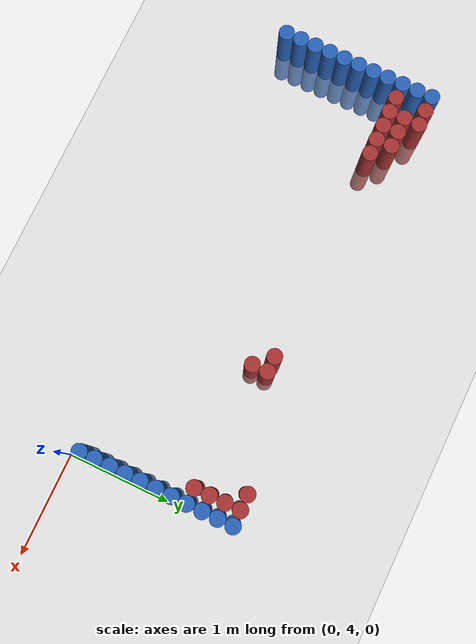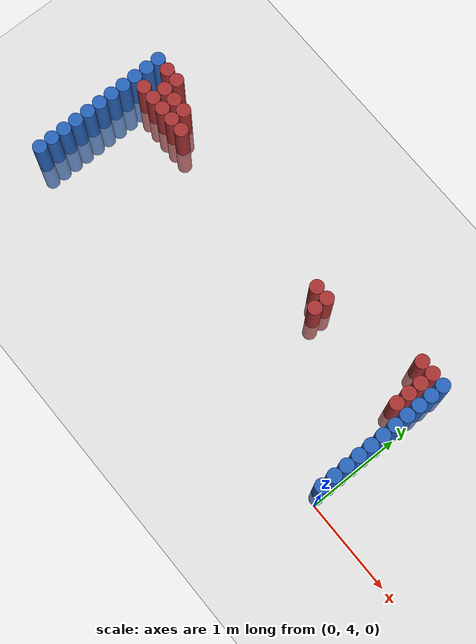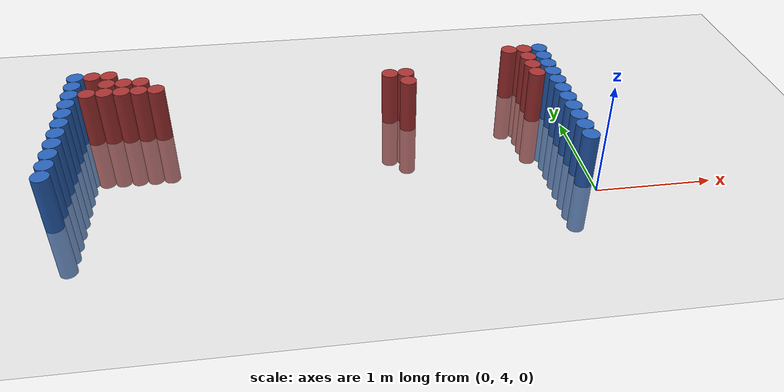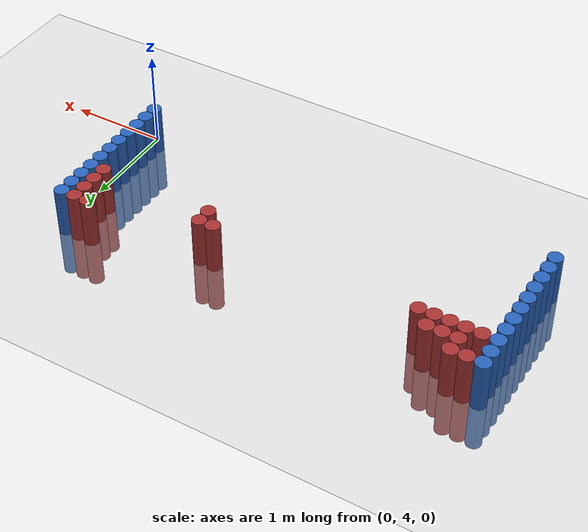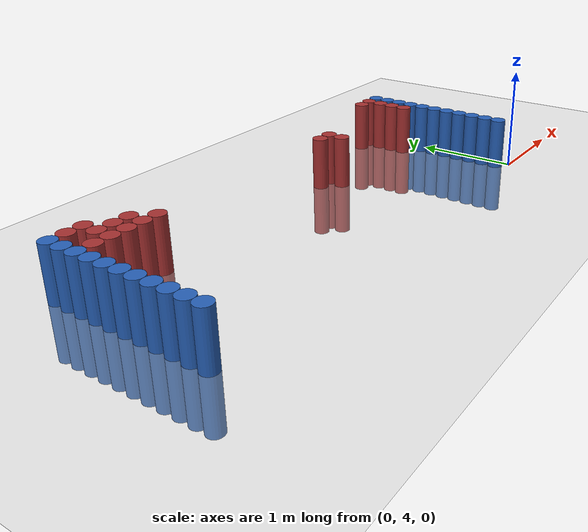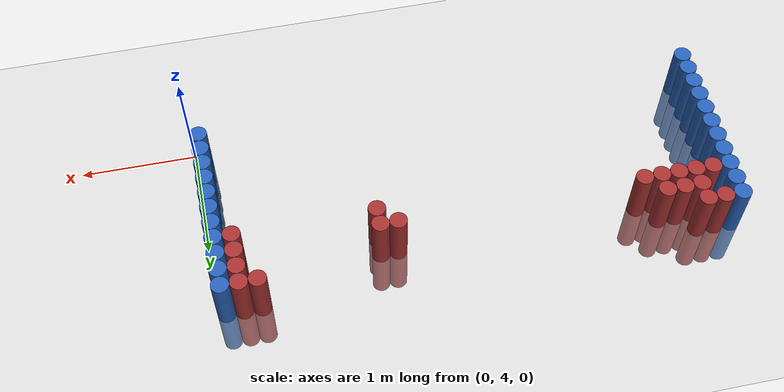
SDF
<sdf version="1.6">
 <world name="default">
  <model name="ground_plane">
   <static>1</static>
   <link name="link">
    <collision name="collision">
     <geometry><plane><normal>0 0 1</normal><size>100 100</size></plane></geometry>
     <surface><friction><ode><mu>100</mu><mu2>50</mu2></ode></friction></surface>
    </collision>
    <visual name="visual">
     <cast_shadows>0</cast_shadows>
     <geometry><plane><normal>0 0 1</normal><size>100 100</size></plane></geometry>
     <material>
      <script><uri>file://media/materials/scripts/gazebo.material</uri><name>Gazebo/Grey</name></script>
     </material>
    </visual>
   </link>
  </model>
  <model name="unit_cylinder_82">
   <static>1</static>
   <pose>-0.075000 4.125000 0.000000 0.000000 0.000000 0.000000</pose>
   <link name="link">
    <inertial>
     <mass>1</mass>
     <inertia><ixx>0.145833</ixx><ixy>0</ixy><ixz>0</ixz><iyy>0.145833</iyy><iyz>0</iyz><izz>0.125</izz></inertia>
    </inertial>
    <collision name="collision">
     <geometry><cylinder><radius>0.075000</radius><length>1</length></cylinder></geometry>
    </collision>
    <visual name="visual">
     <geometry><cylinder><radius>0.075000</radius><length>1</length></cylinder></geometry>
     <material>
      <ambient>0.152000 0.379000 0.720000 1</ambient>
      <diffuse>0.152000 0.379000 0.720000 1</diffuse>
     </material>
     <material>
      <script><name>Gazebo/Grey</name><uri>file://media/materials/scripts/gazebo.material</uri></script>
     </material>
    </visual>
    <sensor name="sensor_contact" type="contact"><contact><collision>collision</collision></contact></sensor>
   </link>
   <plugin filename="gz-sim-touchplugin-system" name="gz::sim::systems::TouchPlugin">
    <target>robot</target>
    <namespace>robot</namespace>
    <time>0.001</time>
    <enabled>true</enabled>
   </plugin>
  </model>
  <model name="unit_cylinder_83">
   <static>1</static>
   <pose>-4.425000 4.125000 0.000000 0.000000 0.000000 0.000000</pose>
   <link name="link">
    <inertial>
     <mass>1</mass>
     <inertia><ixx>0.145833</ixx><ixy>0</ixy><ixz>0</ixz><iyy>0.145833</iyy><iyz>0</iyz><izz>0.125</izz></inertia>
    </inertial>
    <collision name="collision">
     <geometry><cylinder><radius>0.075000</radius><length>1</length></cylinder></geometry>
    </collision>
    <visual name="visual">
     <geometry><cylinder><radius>0.075000</radius><length>1</length></cylinder></geometry>
     <material>
      <ambient>0.152000 0.379000 0.720000 1</ambient>
      <diffuse>0.152000 0.379000 0.720000 1</diffuse>
     </material>
     <material>
      <script><name>Gazebo/Grey</name><uri>file://media/materials/scripts/gazebo.material</uri></script>
     </material>
    </visual>
    <sensor name="sensor_contact" type="contact"><contact><collision>collision</collision></contact></sensor>
   </link>
   <plugin filename="gz-sim-touchplugin-system" name="gz::sim::systems::TouchPlugin">
    <target>robot</target>
    <namespace>robot</namespace>
    <time>0.001</time>
    <enabled>true</enabled>
   </plugin>
  </model>
  <model name="unit_cylinder_84">
   <static>1</static>
   <pose>-0.075000 4.275000 0.000000 0.000000 0.000000 0.000000</pose>
   <link name="link">
    <inertial>
     <mass>1</mass>
     <inertia><ixx>0.145833</ixx><ixy>0</ixy><ixz>0</ixz><iyy>0.145833</iyy><iyz>0</iyz><izz>0.125</izz></inertia>
    </inertial>
    <collision name="collision">
     <geometry><cylinder><radius>0.075000</radius><length>1</length></cylinder></geometry>
    </collision>
    <visual name="visual">
     <geometry><cylinder><radius>0.075000</radius><length>1</length></cylinder></geometry>
     <material>
      <ambient>0.152000 0.379000 0.720000 1</ambient>
      <diffuse>0.152000 0.379000 0.720000 1</diffuse>
     </material>
     <material>
      <script><name>Gazebo/Grey</name><uri>file://media/materials/scripts/gazebo.material</uri></script>
     </material>
    </visual>
    <sensor name="sensor_contact" type="contact"><contact><collision>collision</collision></contact></sensor>
   </link>
   <plugin filename="gz-sim-touchplugin-system" name="gz::sim::systems::TouchPlugin">
    <target>robot</target>
    <namespace>robot</namespace>
    <time>0.001</time>
    <enabled>true</enabled>
   </plugin>
  </model>
  <model name="unit_cylinder_85">
   <static>1</static>
   <pose>-4.425000 4.275000 0.000000 0.000000 0.000000 0.000000</pose>
   <link name="link">
    <inertial>
     <mass>1</mass>
     <inertia><ixx>0.145833</ixx><ixy>0</ixy><ixz>0</ixz><iyy>0.145833</iyy><iyz>0</iyz><izz>0.125</izz></inertia>
    </inertial>
    <collision name="collision">
     <geometry><cylinder><radius>0.075000</radius><length>1</length></cylinder></geometry>
    </collision>
    <visual name="visual">
     <geometry><cylinder><radius>0.075000</radius><length>1</length></cylinder></geometry>
     <material>
      <ambient>0.152000 0.379000 0.720000 1</ambient>
      <diffuse>0.152000 0.379000 0.720000 1</diffuse>
     </material>
     <material>
      <script><name>Gazebo/Grey</name><uri>file://media/materials/scripts/gazebo.material</uri></script>
     </material>
    </visual>
    <sensor name="sensor_contact" type="contact"><contact><collision>collision</collision></contact></sensor>
   </link>
   <plugin filename="gz-sim-touchplugin-system" name="gz::sim::systems::TouchPlugin">
    <target>robot</target>
    <namespace>robot</namespace>
    <time>0.001</time>
    <enabled>true</enabled>
   </plugin>
  </model>
  <model name="unit_cylinder_86">
   <static>1</static>
   <pose>-0.075000 4.425000 0.000000 0.000000 0.000000 0.000000</pose>
   <link name="link">
    <inertial>
     <mass>1</mass>
     <inertia><ixx>0.145833</ixx><ixy>0</ixy><ixz>0</ixz><iyy>0.145833</iyy><iyz>0</iyz><izz>0.125</izz></inertia>
    </inertial>
    <collision name="collision">
     <geometry><cylinder><radius>0.075000</radius><length>1</length></cylinder></geometry>
    </collision>
    <visual name="visual">
     <geometry><cylinder><radius>0.075000</radius><length>1</length></cylinder></geometry>
     <material>
      <ambient>0.152000 0.379000 0.720000 1</ambient>
      <diffuse>0.152000 0.379000 0.720000 1</diffuse>
     </material>
     <material>
      <script><name>Gazebo/Grey</name><uri>file://media/materials/scripts/gazebo.material</uri></script>
     </material>
    </visual>
    <sensor name="sensor_contact" type="contact"><contact><collision>collision</collision></contact></sensor>
   </link>
   <plugin filename="gz-sim-touchplugin-system" name="gz::sim::systems::TouchPlugin">
    <target>robot</target>
    <namespace>robot</namespace>
    <time>0.001</time>
    <enabled>true</enabled>
   </plugin>
  </model>
  <model name="unit_cylinder_87">
   <static>1</static>
   <pose>-4.425000 4.425000 0.000000 0.000000 0.000000 0.000000</pose>
   <link name="link">
    <inertial>
     <mass>1</mass>
     <inertia><ixx>0.145833</ixx><ixy>0</ixy><ixz>0</ixz><iyy>0.145833</iyy><iyz>0</iyz><izz>0.125</izz></inertia>
    </inertial>
    <collision name="collision">
     <geometry><cylinder><radius>0.075000</radius><length>1</length></cylinder></geometry>
    </collision>
    <visual name="visual">
     <geometry><cylinder><radius>0.075000</radius><length>1</length></cylinder></geometry>
     <material>
      <ambient>0.152000 0.379000 0.720000 1</ambient>
      <diffuse>0.152000 0.379000 0.720000 1</diffuse>
     </material>
     <material>
      <script><name>Gazebo/Grey</name><uri>file://media/materials/scripts/gazebo.material</uri></script>
     </material>
    </visual>
    <sensor name="sensor_contact" type="contact"><contact><collision>collision</collision></contact></sensor>
   </link>
   <plugin filename="gz-sim-touchplugin-system" name="gz::sim::systems::TouchPlugin">
    <target>robot</target>
    <namespace>robot</namespace>
    <time>0.001</time>
    <enabled>true</enabled>
   </plugin>
  </model>
  <model name="unit_cylinder_88">
   <static>1</static>
   <pose>-0.075000 4.575000 0.000000 0.000000 0.000000 0.000000</pose>
   <link name="link">
    <inertial>
     <mass>1</mass>
     <inertia><ixx>0.145833</ixx><ixy>0</ixy><ixz>0</ixz><iyy>0.145833</iyy><iyz>0</iyz><izz>0.125</izz></inertia>
    </inertial>
    <collision name="collision">
     <geometry><cylinder><radius>0.075000</radius><length>1</length></cylinder></geometry>
    </collision>
    <visual name="visual">
     <geometry><cylinder><radius>0.075000</radius><length>1</length></cylinder></geometry>
     <material>
      <ambient>0.152000 0.379000 0.720000 1</ambient>
      <diffuse>0.152000 0.379000 0.720000 1</diffuse>
     </material>
     <material>
      <script><name>Gazebo/Grey</name><uri>file://media/materials/scripts/gazebo.material</uri></script>
     </material>
    </visual>
    <sensor name="sensor_contact" type="contact"><contact><collision>collision</collision></contact></sensor>
   </link>
   <plugin filename="gz-sim-touchplugin-system" name="gz::sim::systems::TouchPlugin">
    <target>robot</target>
    <namespace>robot</namespace>
    <time>0.001</time>
    <enabled>true</enabled>
   </plugin>
  </model>
  <model name="unit_cylinder_89">
   <static>1</static>
   <pose>-4.425000 4.575000 0.000000 0.000000 0.000000 0.000000</pose>
   <link name="link">
    <inertial>
     <mass>1</mass>
     <inertia><ixx>0.145833</ixx><ixy>0</ixy><ixz>0</ixz><iyy>0.145833</iyy><iyz>0</iyz><izz>0.125</izz></inertia>
    </inertial>
    <collision name="collision">
     <geometry><cylinder><radius>0.075000</radius><length>1</length></cylinder></geometry>
    </collision>
    <visual name="visual">
     <geometry><cylinder><radius>0.075000</radius><length>1</length></cylinder></geometry>
     <material>
      <ambient>0.152000 0.379000 0.720000 1</ambient>
      <diffuse>0.152000 0.379000 0.720000 1</diffuse>
     </material>
     <material>
      <script><name>Gazebo/Grey</name><uri>file://media/materials/scripts/gazebo.material</uri></script>
     </material>
    </visual>
    <sensor name="sensor_contact" type="contact"><contact><collision>collision</collision></contact></sensor>
   </link>
   <plugin filename="gz-sim-touchplugin-system" name="gz::sim::systems::TouchPlugin">
    <target>robot</target>
    <namespace>robot</namespace>
    <time>0.001</time>
    <enabled>true</enabled>
   </plugin>
  </model>
  <model name="unit_cylinder_90">
   <static>1</static>
   <pose>-0.075000 4.725000 0.000000 0.000000 0.000000 0.000000</pose>
   <link name="link">
    <inertial>
     <mass>1</mass>
     <inertia><ixx>0.145833</ixx><ixy>0</ixy><ixz>0</ixz><iyy>0.145833</iyy><iyz>0</iyz><izz>0.125</izz></inertia>
    </inertial>
    <collision name="collision">
     <geometry><cylinder><radius>0.075000</radius><length>1</length></cylinder></geometry>
    </collision>
    <visual name="visual">
     <geometry><cylinder><radius>0.075000</radius><length>1</length></cylinder></geometry>
     <material>
      <ambient>0.152000 0.379000 0.720000 1</ambient>
      <diffuse>0.152000 0.379000 0.720000 1</diffuse>
     </material>
     <material>
      <script><name>Gazebo/Grey</name><uri>file://media/materials/scripts/gazebo.material</uri></script>
     </material>
    </visual>
    <sensor name="sensor_contact" type="contact"><contact><collision>collision</collision></contact></sensor>
   </link>
   <plugin filename="gz-sim-touchplugin-system" name="gz::sim::systems::TouchPlugin">
    <target>robot</target>
    <namespace>robot</namespace>
    <time>0.001</time>
    <enabled>true</enabled>
   </plugin>
  </model>
  <model name="unit_cylinder_91">
   <static>1</static>
   <pose>-4.425000 4.725000 0.000000 0.000000 0.000000 0.000000</pose>
   <link name="link">
    <inertial>
     <mass>1</mass>
     <inertia><ixx>0.145833</ixx><ixy>0</ixy><ixz>0</ixz><iyy>0.145833</iyy><iyz>0</iyz><izz>0.125</izz></inertia>
    </inertial>
    <collision name="collision">
     <geometry><cylinder><radius>0.075000</radius><length>1</length></cylinder></geometry>
    </collision>
    <visual name="visual">
     <geometry><cylinder><radius>0.075000</radius><length>1</length></cylinder></geometry>
     <material>
      <ambient>0.152000 0.379000 0.720000 1</ambient>
      <diffuse>0.152000 0.379000 0.720000 1</diffuse>
     </material>
     <material>
      <script><name>Gazebo/Grey</name><uri>file://media/materials/scripts/gazebo.material</uri></script>
     </material>
    </visual>
    <sensor name="sensor_contact" type="contact"><contact><collision>collision</collision></contact></sensor>
   </link>
   <plugin filename="gz-sim-touchplugin-system" name="gz::sim::systems::TouchPlugin">
    <target>robot</target>
    <namespace>robot</namespace>
    <time>0.001</time>
    <enabled>true</enabled>
   </plugin>
  </model>
  <model name="unit_cylinder_92">
   <static>1</static>
   <pose>-0.075000 4.875000 0.000000 0.000000 0.000000 0.000000</pose>
   <link name="link">
    <inertial>
     <mass>1</mass>
     <inertia><ixx>0.145833</ixx><ixy>0</ixy><ixz>0</ixz><iyy>0.145833</iyy><iyz>0</iyz><izz>0.125</izz></inertia>
    </inertial>
    <collision name="collision">
     <geometry><cylinder><radius>0.075000</radius><length>1</length></cylinder></geometry>
    </collision>
    <visual name="visual">
     <geometry><cylinder><radius>0.075000</radius><length>1</length></cylinder></geometry>
     <material>
      <ambient>0.152000 0.379000 0.720000 1</ambient>
      <diffuse>0.152000 0.379000 0.720000 1</diffuse>
     </material>
     <material>
      <script><name>Gazebo/Grey</name><uri>file://media/materials/scripts/gazebo.material</uri></script>
     </material>
    </visual>
    <sensor name="sensor_contact" type="contact"><contact><collision>collision</collision></contact></sensor>
   </link>
   <plugin filename="gz-sim-touchplugin-system" name="gz::sim::systems::TouchPlugin">
    <target>robot</target>
    <namespace>robot</namespace>
    <time>0.001</time>
    <enabled>true</enabled>
   </plugin>
  </model>
  <model name="unit_cylinder_93">
   <static>1</static>
   <pose>-4.425000 4.875000 0.000000 0.000000 0.000000 0.000000</pose>
   <link name="link">
    <inertial>
     <mass>1</mass>
     <inertia><ixx>0.145833</ixx><ixy>0</ixy><ixz>0</ixz><iyy>0.145833</iyy><iyz>0</iyz><izz>0.125</izz></inertia>
    </inertial>
    <collision name="collision">
     <geometry><cylinder><radius>0.075000</radius><length>1</length></cylinder></geometry>
    </collision>
    <visual name="visual">
     <geometry><cylinder><radius>0.075000</radius><length>1</length></cylinder></geometry>
     <material>
      <ambient>0.152000 0.379000 0.720000 1</ambient>
      <diffuse>0.152000 0.379000 0.720000 1</diffuse>
     </material>
     <material>
      <script><name>Gazebo/Grey</name><uri>file://media/materials/scripts/gazebo.material</uri></script>
     </material>
    </visual>
    <sensor name="sensor_contact" type="contact"><contact><collision>collision</collision></contact></sensor>
   </link>
   <plugin filename="gz-sim-touchplugin-system" name="gz::sim::systems::TouchPlugin">
    <target>robot</target>
    <namespace>robot</namespace>
    <time>0.001</time>
    <enabled>true</enabled>
   </plugin>
  </model>
  <model name="unit_cylinder_94">
   <static>1</static>
   <pose>-0.075000 5.025000 0.000000 0.000000 0.000000 0.000000</pose>
   <link name="link">
    <inertial>
     <mass>1</mass>
     <inertia><ixx>0.145833</ixx><ixy>0</ixy><ixz>0</ixz><iyy>0.145833</iyy><iyz>0</iyz><izz>0.125</izz></inertia>
    </inertial>
    <collision name="collision">
     <geometry><cylinder><radius>0.075000</radius><length>1</length></cylinder></geometry>
    </collision>
    <visual name="visual">
     <geometry><cylinder><radius>0.075000</radius><length>1</length></cylinder></geometry>
     <material>
      <ambient>0.152000 0.379000 0.720000 1</ambient>
      <diffuse>0.152000 0.379000 0.720000 1</diffuse>
     </material>
     <material>
      <script><name>Gazebo/Grey</name><uri>file://media/materials/scripts/gazebo.material</uri></script>
     </material>
    </visual>
    <sensor name="sensor_contact" type="contact"><contact><collision>collision</collision></contact></sensor>
   </link>
   <plugin filename="gz-sim-touchplugin-system" name="gz::sim::systems::TouchPlugin">
    <target>robot</target>
    <namespace>robot</namespace>
    <time>0.001</time>
    <enabled>true</enabled>
   </plugin>
  </model>
  <model name="unit_cylinder_95">
   <static>1</static>
   <pose>-4.425000 5.025000 0.000000 0.000000 0.000000 0.000000</pose>
   <link name="link">
    <inertial>
     <mass>1</mass>
     <inertia><ixx>0.145833</ixx><ixy>0</ixy><ixz>0</ixz><iyy>0.145833</iyy><iyz>0</iyz><izz>0.125</izz></inertia>
    </inertial>
    <collision name="collision">
     <geometry><cylinder><radius>0.075000</radius><length>1</length></cylinder></geometry>
    </collision>
    <visual name="visual">
     <geometry><cylinder><radius>0.075000</radius><length>1</length></cylinder></geometry>
     <material>
      <ambient>0.152000 0.379000 0.720000 1</ambient>
      <diffuse>0.152000 0.379000 0.720000 1</diffuse>
     </material>
     <material>
      <script><name>Gazebo/Grey</name><uri>file://media/materials/scripts/gazebo.material</uri></script>
     </material>
    </visual>
    <sensor name="sensor_contact" type="contact"><contact><collision>collision</collision></contact></sensor>
   </link>
   <plugin filename="gz-sim-touchplugin-system" name="gz::sim::systems::TouchPlugin">
    <target>robot</target>
    <namespace>robot</namespace>
    <time>0.001</time>
    <enabled>true</enabled>
   </plugin>
  </model>
  <model name="unit_cylinder_96">
   <static>1</static>
   <pose>-4.425000 5.175000 0.000000 0.000000 0.000000 0.000000</pose>
   <link name="link">
    <inertial>
     <mass>1</mass>
     <inertia><ixx>0.145833</ixx><ixy>0</ixy><ixz>0</ixz><iyy>0.145833</iyy><iyz>0</iyz><izz>0.125</izz></inertia>
    </inertial>
    <collision name="collision">
     <geometry><cylinder><radius>0.075000</radius><length>1</length></cylinder></geometry>
    </collision>
    <visual name="visual">
     <geometry><cylinder><radius>0.075000</radius><length>1</length></cylinder></geometry>
     <material>
      <ambient>0.152000 0.379000 0.720000 1</ambient>
      <diffuse>0.152000 0.379000 0.720000 1</diffuse>
     </material>
     <material>
      <script><name>Gazebo/Grey</name><uri>file://media/materials/scripts/gazebo.material</uri></script>
     </material>
    </visual>
    <sensor name="sensor_contact" type="contact"><contact><collision>collision</collision></contact></sensor>
   </link>
   <plugin filename="gz-sim-touchplugin-system" name="gz::sim::systems::TouchPlugin">
    <target>robot</target>
    <namespace>robot</namespace>
    <time>0.001</time>
    <enabled>true</enabled>
   </plugin>
  </model>
  <model name="unit_cylinder_97">
   <static>1</static>
   <pose>-4.425000 5.325000 0.000000 0.000000 0.000000 0.000000</pose>
   <link name="link">
    <inertial>
     <mass>1</mass>
     <inertia><ixx>0.145833</ixx><ixy>0</ixy><ixz>0</ixz><iyy>0.145833</iyy><iyz>0</iyz><izz>0.125</izz></inertia>
    </inertial>
    <collision name="collision">
     <geometry><cylinder><radius>0.075000</radius><length>1</length></cylinder></geometry>
    </collision>
    <visual name="visual">
     <geometry><cylinder><radius>0.075000</radius><length>1</length></cylinder></geometry>
     <material>
      <ambient>0.152000 0.379000 0.720000 1</ambient>
      <diffuse>0.152000 0.379000 0.720000 1</diffuse>
     </material>
     <material>
      <script><name>Gazebo/Grey</name><uri>file://media/materials/scripts/gazebo.material</uri></script>
     </material>
    </visual>
    <sensor name="sensor_contact" type="contact"><contact><collision>collision</collision></contact></sensor>
   </link>
   <plugin filename="gz-sim-touchplugin-system" name="gz::sim::systems::TouchPlugin">
    <target>robot</target>
    <namespace>robot</namespace>
    <time>0.001</time>
    <enabled>true</enabled>
   </plugin>
  </model>
  <model name="unit_cylinder_98">
   <static>1</static>
   <pose>-4.425000 5.475000 0.000000 0.000000 0.000000 0.000000</pose>
   <link name="link">
    <inertial>
     <mass>1</mass>
     <inertia><ixx>0.145833</ixx><ixy>0</ixy><ixz>0</ixz><iyy>0.145833</iyy><iyz>0</iyz><izz>0.125</izz></inertia>
    </inertial>
    <collision name="collision">
     <geometry><cylinder><radius>0.075000</radius><length>1</length></cylinder></geometry>
    </collision>
    <visual name="visual">
     <geometry><cylinder><radius>0.075000</radius><length>1</length></cylinder></geometry>
     <material>
      <ambient>0.152000 0.379000 0.720000 1</ambient>
      <diffuse>0.152000 0.379000 0.720000 1</diffuse>
     </material>
     <material>
      <script><name>Gazebo/Grey</name><uri>file://media/materials/scripts/gazebo.material</uri></script>
     </material>
    </visual>
    <sensor name="sensor_contact" type="contact"><contact><collision>collision</collision></contact></sensor>
   </link>
   <plugin filename="gz-sim-touchplugin-system" name="gz::sim::systems::TouchPlugin">
    <target>robot</target>
    <namespace>robot</namespace>
    <time>0.001</time>
    <enabled>true</enabled>
   </plugin>
  </model>
  <model name="unit_cylinder_99">
   <static>1</static>
   <pose>-4.425000 5.625000 0.000000 0.000000 0.000000 0.000000</pose>
   <link name="link">
    <inertial>
     <mass>1</mass>
     <inertia><ixx>0.145833</ixx><ixy>0</ixy><ixz>0</ixz><iyy>0.145833</iyy><iyz>0</iyz><izz>0.125</izz></inertia>
    </inertial>
    <collision name="collision">
     <geometry><cylinder><radius>0.075000</radius><length>1</length></cylinder></geometry>
    </collision>
    <visual name="visual">
     <geometry><cylinder><radius>0.075000</radius><length>1</length></cylinder></geometry>
     <material>
      <ambient>0.152000 0.379000 0.720000 1</ambient>
      <diffuse>0.152000 0.379000 0.720000 1</diffuse>
     </material>
     <material>
      <script><name>Gazebo/Grey</name><uri>file://media/materials/scripts/gazebo.material</uri></script>
     </material>
    </visual>
    <sensor name="sensor_contact" type="contact"><contact><collision>collision</collision></contact></sensor>
   </link>
   <plugin filename="gz-sim-touchplugin-system" name="gz::sim::systems::TouchPlugin">
    <target>robot</target>
    <namespace>robot</namespace>
    <time>0.001</time>
    <enabled>true</enabled>
   </plugin>
  </model>
  <model name="unit_cylinder_126">
   <static>1</static>
   <pose>-4.275000 5.325000 0.000000 0.000000 0.000000 0.000000</pose>
   <link name="link">
    <inertial>
     <mass>1</mass>
     <inertia><ixx>0.145833</ixx><ixy>0</ixy><ixz>0</ixz><iyy>0.145833</iyy><iyz>0</iyz><izz>0.125</izz></inertia>
    </inertial>
    <collision name="collision">
     <geometry><cylinder><radius>0.075000</radius><length>1</length></cylinder></geometry>
    </collision>
    <visual name="visual">
     <geometry><cylinder><radius>0.075000</radius><length>1</length></cylinder></geometry>
     <material>
      <ambient>0.648000 0.192000 0.192000 1</ambient>
      <diffuse>0.648000 0.192000 0.192000 1</diffuse>
     </material>
     <material>
      <script><name>Gazebo/Grey</name><uri>file://media/materials/scripts/gazebo.material</uri></script>
     </material>
    </visual>
    <sensor name="sensor_contact" type="contact"><contact><collision>collision</collision></contact></sensor>
   </link>
   <plugin filename="gz-sim-touchplugin-system" name="gz::sim::systems::TouchPlugin">
    <target>robot</target>
    <namespace>robot</namespace>
    <time>0.001</time>
    <enabled>true</enabled>
   </plugin>
  </model>
  <model name="unit_cylinder_127">
   <static>1</static>
   <pose>-4.275000 5.625000 0.000000 0.000000 0.000000 0.000000</pose>
   <link name="link">
    <inertial>
     <mass>1</mass>
     <inertia><ixx>0.145833</ixx><ixy>0</ixy><ixz>0</ixz><iyy>0.145833</iyy><iyz>0</iyz><izz>0.125</izz></inertia>
    </inertial>
    <collision name="collision">
     <geometry><cylinder><radius>0.075000</radius><length>1</length></cylinder></geometry>
    </collision>
    <visual name="visual">
     <geometry><cylinder><radius>0.075000</radius><length>1</length></cylinder></geometry>
     <material>
      <ambient>0.648000 0.192000 0.192000 1</ambient>
      <diffuse>0.648000 0.192000 0.192000 1</diffuse>
     </material>
     <material>
      <script><name>Gazebo/Grey</name><uri>file://media/materials/scripts/gazebo.material</uri></script>
     </material>
    </visual>
    <sensor name="sensor_contact" type="contact"><contact><collision>collision</collision></contact></sensor>
   </link>
   <plugin filename="gz-sim-touchplugin-system" name="gz::sim::systems::TouchPlugin">
    <target>robot</target>
    <namespace>robot</namespace>
    <time>0.001</time>
    <enabled>true</enabled>
   </plugin>
  </model>
  <model name="unit_cylinder_143">
   <static>1</static>
   <pose>-4.125000 5.325000 0.000000 0.000000 0.000000 0.000000</pose>
   <link name="link">
    <inertial>
     <mass>1</mass>
     <inertia><ixx>0.145833</ixx><ixy>0</ixy><ixz>0</ixz><iyy>0.145833</iyy><iyz>0</iyz><izz>0.125</izz></inertia>
    </inertial>
    <collision name="collision">
     <geometry><cylinder><radius>0.075000</radius><length>1</length></cylinder></geometry>
    </collision>
    <visual name="visual">
     <geometry><cylinder><radius>0.075000</radius><length>1</length></cylinder></geometry>
     <material>
      <ambient>0.648000 0.192000 0.192000 1</ambient>
      <diffuse>0.648000 0.192000 0.192000 1</diffuse>
     </material>
     <material>
      <script><name>Gazebo/Grey</name><uri>file://media/materials/scripts/gazebo.material</uri></script>
     </material>
    </visual>
    <sensor name="sensor_contact" type="contact"><contact><collision>collision</collision></contact></sensor>
   </link>
   <plugin filename="gz-sim-touchplugin-system" name="gz::sim::systems::TouchPlugin">
    <target>robot</target>
    <namespace>robot</namespace>
    <time>0.001</time>
    <enabled>true</enabled>
   </plugin>
  </model>
  <model name="unit_cylinder_144">
   <static>1</static>
   <pose>-4.125000 5.475000 0.000000 0.000000 0.000000 0.000000</pose>
   <link name="link">
    <inertial>
     <mass>1</mass>
     <inertia><ixx>0.145833</ixx><ixy>0</ixy><ixz>0</ixz><iyy>0.145833</iyy><iyz>0</iyz><izz>0.125</izz></inertia>
    </inertial>
    <collision name="collision">
     <geometry><cylinder><radius>0.075000</radius><length>1</length></cylinder></geometry>
    </collision>
    <visual name="visual">
     <geometry><cylinder><radius>0.075000</radius><length>1</length></cylinder></geometry>
     <material>
      <ambient>0.648000 0.192000 0.192000 1</ambient>
      <diffuse>0.648000 0.192000 0.192000 1</diffuse>
     </material>
     <material>
      <script><name>Gazebo/Grey</name><uri>file://media/materials/scripts/gazebo.material</uri></script>
     </material>
    </visual>
    <sensor name="sensor_contact" type="contact"><contact><collision>collision</collision></contact></sensor>
   </link>
   <plugin filename="gz-sim-touchplugin-system" name="gz::sim::systems::TouchPlugin">
    <target>robot</target>
    <namespace>robot</namespace>
    <time>0.001</time>
    <enabled>true</enabled>
   </plugin>
  </model>
  <model name="unit_cylinder_145">
   <static>1</static>
   <pose>-4.125000 5.625000 0.000000 0.000000 0.000000 0.000000</pose>
   <link name="link">
    <inertial>
     <mass>1</mass>
     <inertia><ixx>0.145833</ixx><ixy>0</ixy><ixz>0</ixz><iyy>0.145833</iyy><iyz>0</iyz><izz>0.125</izz></inertia>
    </inertial>
    <collision name="collision">
     <geometry><cylinder><radius>0.075000</radius><length>1</length></cylinder></geometry>
    </collision>
    <visual name="visual">
     <geometry><cylinder><radius>0.075000</radius><length>1</length></cylinder></geometry>
     <material>
      <ambient>0.648000 0.192000 0.192000 1</ambient>
      <diffuse>0.648000 0.192000 0.192000 1</diffuse>
     </material>
     <material>
      <script><name>Gazebo/Grey</name><uri>file://media/materials/scripts/gazebo.material</uri></script>
     </material>
    </visual>
    <sensor name="sensor_contact" type="contact"><contact><collision>collision</collision></contact></sensor>
   </link>
   <plugin filename="gz-sim-touchplugin-system" name="gz::sim::systems::TouchPlugin">
    <target>robot</target>
    <namespace>robot</namespace>
    <time>0.001</time>
    <enabled>true</enabled>
   </plugin>
  </model>
  <model name="unit_cylinder_154">
   <static>1</static>
   <pose>-3.975000 5.325000 0.000000 0.000000 0.000000 0.000000</pose>
   <link name="link">
    <inertial>
     <mass>1</mass>
     <inertia><ixx>0.145833</ixx><ixy>0</ixy><ixz>0</ixz><iyy>0.145833</iyy><iyz>0</iyz><izz>0.125</izz></inertia>
    </inertial>
    <collision name="collision">
     <geometry><cylinder><radius>0.075000</radius><length>1</length></cylinder></geometry>
    </collision>
    <visual name="visual">
     <geometry><cylinder><radius>0.075000</radius><length>1</length></cylinder></geometry>
     <material>
      <ambient>0.648000 0.192000 0.192000 1</ambient>
      <diffuse>0.648000 0.192000 0.192000 1</diffuse>
     </material>
     <material>
      <script><name>Gazebo/Grey</name><uri>file://media/materials/scripts/gazebo.material</uri></script>
     </material>
    </visual>
    <sensor name="sensor_contact" type="contact"><contact><collision>collision</collision></contact></sensor>
   </link>
   <plugin filename="gz-sim-touchplugin-system" name="gz::sim::systems::TouchPlugin">
    <target>robot</target>
    <namespace>robot</namespace>
    <time>0.001</time>
    <enabled>true</enabled>
   </plugin>
  </model>
  <model name="unit_cylinder_155">
   <static>1</static>
   <pose>-3.975000 5.475000 0.000000 0.000000 0.000000 0.000000</pose>
   <link name="link">
    <inertial>
     <mass>1</mass>
     <inertia><ixx>0.145833</ixx><ixy>0</ixy><ixz>0</ixz><iyy>0.145833</iyy><iyz>0</iyz><izz>0.125</izz></inertia>
    </inertial>
    <collision name="collision">
     <geometry><cylinder><radius>0.075000</radius><length>1</length></cylinder></geometry>
    </collision>
    <visual name="visual">
     <geometry><cylinder><radius>0.075000</radius><length>1</length></cylinder></geometry>
     <material>
      <ambient>0.648000 0.192000 0.192000 1</ambient>
      <diffuse>0.648000 0.192000 0.192000 1</diffuse>
     </material>
     <material>
      <script><name>Gazebo/Grey</name><uri>file://media/materials/scripts/gazebo.material</uri></script>
     </material>
    </visual>
    <sensor name="sensor_contact" type="contact"><contact><collision>collision</collision></contact></sensor>
   </link>
   <plugin filename="gz-sim-touchplugin-system" name="gz::sim::systems::TouchPlugin">
    <target>robot</target>
    <namespace>robot</namespace>
    <time>0.001</time>
    <enabled>true</enabled>
   </plugin>
  </model>
  <model name="unit_cylinder_161">
   <static>1</static>
   <pose>-3.825000 5.325000 0.000000 0.000000 0.000000 0.000000</pose>
   <link name="link">
    <inertial>
     <mass>1</mass>
     <inertia><ixx>0.145833</ixx><ixy>0</ixy><ixz>0</ixz><iyy>0.145833</iyy><iyz>0</iyz><izz>0.125</izz></inertia>
    </inertial>
    <collision name="collision">
     <geometry><cylinder><radius>0.075000</radius><length>1</length></cylinder></geometry>
    </collision>
    <visual name="visual">
     <geometry><cylinder><radius>0.075000</radius><length>1</length></cylinder></geometry>
     <material>
      <ambient>0.648000 0.192000 0.192000 1</ambient>
      <diffuse>0.648000 0.192000 0.192000 1</diffuse>
     </material>
     <material>
      <script><name>Gazebo/Grey</name><uri>file://media/materials/scripts/gazebo.material</uri></script>
     </material>
    </visual>
    <sensor name="sensor_contact" type="contact"><contact><collision>collision</collision></contact></sensor>
   </link>
   <plugin filename="gz-sim-touchplugin-system" name="gz::sim::systems::TouchPlugin">
    <target>robot</target>
    <namespace>robot</namespace>
    <time>0.001</time>
    <enabled>true</enabled>
   </plugin>
  </model>
  <model name="unit_cylinder_162">
   <static>1</static>
   <pose>-3.825000 5.475000 0.000000 0.000000 0.000000 0.000000</pose>
   <link name="link">
    <inertial>
     <mass>1</mass>
     <inertia><ixx>0.145833</ixx><ixy>0</ixy><ixz>0</ixz><iyy>0.145833</iyy><iyz>0</iyz><izz>0.125</izz></inertia>
    </inertial>
    <collision name="collision">
     <geometry><cylinder><radius>0.075000</radius><length>1</length></cylinder></geometry>
    </collision>
    <visual name="visual">
     <geometry><cylinder><radius>0.075000</radius><length>1</length></cylinder></geometry>
     <material>
      <ambient>0.648000 0.192000 0.192000 1</ambient>
      <diffuse>0.648000 0.192000 0.192000 1</diffuse>
     </material>
     <material>
      <script><name>Gazebo/Grey</name><uri>file://media/materials/scripts/gazebo.material</uri></script>
     </material>
    </visual>
    <sensor name="sensor_contact" type="contact"><contact><collision>collision</collision></contact></sensor>
   </link>
   <plugin filename="gz-sim-touchplugin-system" name="gz::sim::systems::TouchPlugin">
    <target>robot</target>
    <namespace>robot</namespace>
    <time>0.001</time>
    <enabled>true</enabled>
   </plugin>
  </model>
  <model name="unit_cylinder_167">
   <static>1</static>
   <pose>-3.675000 5.325000 0.000000 0.000000 0.000000 0.000000</pose>
   <link name="link">
    <inertial>
     <mass>1</mass>
     <inertia><ixx>0.145833</ixx><ixy>0</ixy><ixz>0</ixz><iyy>0.145833</iyy><iyz>0</iyz><izz>0.125</izz></inertia>
    </inertial>
    <collision name="collision">
     <geometry><cylinder><radius>0.075000</radius><length>1</length></cylinder></geometry>
    </collision>
    <visual name="visual">
     <geometry><cylinder><radius>0.075000</radius><length>1</length></cylinder></geometry>
     <material>
      <ambient>0.648000 0.192000 0.192000 1</ambient>
      <diffuse>0.648000 0.192000 0.192000 1</diffuse>
     </material>
     <material>
      <script><name>Gazebo/Grey</name><uri>file://media/materials/scripts/gazebo.material</uri></script>
     </material>
    </visual>
    <sensor name="sensor_contact" type="contact"><contact><collision>collision</collision></contact></sensor>
   </link>
   <plugin filename="gz-sim-touchplugin-system" name="gz::sim::systems::TouchPlugin">
    <target>robot</target>
    <namespace>robot</namespace>
    <time>0.001</time>
    <enabled>true</enabled>
   </plugin>
  </model>
  <model name="unit_cylinder_227">
   <static>1</static>
   <pose>-1.575000 5.325000 0.000000 0.000000 0.000000 0.000000</pose>
   <link name="link">
    <inertial>
     <mass>1</mass>
     <inertia><ixx>0.145833</ixx><ixy>0</ixy><ixz>0</ixz><iyy>0.145833</iyy><iyz>0</iyz><izz>0.125</izz></inertia>
    </inertial>
    <collision name="collision">
     <geometry><cylinder><radius>0.075000</radius><length>1</length></cylinder></geometry>
    </collision>
    <visual name="visual">
     <geometry><cylinder><radius>0.075000</radius><length>1</length></cylinder></geometry>
     <material>
      <ambient>0.648000 0.192000 0.192000 1</ambient>
      <diffuse>0.648000 0.192000 0.192000 1</diffuse>
     </material>
     <material>
      <script><name>Gazebo/Grey</name><uri>file://media/materials/scripts/gazebo.material</uri></script>
     </material>
    </visual>
    <sensor name="sensor_contact" type="contact"><contact><collision>collision</collision></contact></sensor>
   </link>
   <plugin filename="gz-sim-touchplugin-system" name="gz::sim::systems::TouchPlugin">
    <target>robot</target>
    <namespace>robot</namespace>
    <time>0.001</time>
    <enabled>true</enabled>
   </plugin>
  </model>
  <model name="unit_cylinder_228">
   <static>1</static>
   <pose>-1.425000 5.175000 0.000000 0.000000 0.000000 0.000000</pose>
   <link name="link">
    <inertial>
     <mass>1</mass>
     <inertia><ixx>0.145833</ixx><ixy>0</ixy><ixz>0</ixz><iyy>0.145833</iyy><iyz>0</iyz><izz>0.125</izz></inertia>
    </inertial>
    <collision name="collision">
     <geometry><cylinder><radius>0.075000</radius><length>1</length></cylinder></geometry>
    </collision>
    <visual name="visual">
     <geometry><cylinder><radius>0.075000</radius><length>1</length></cylinder></geometry>
     <material>
      <ambient>0.648000 0.192000 0.192000 1</ambient>
      <diffuse>0.648000 0.192000 0.192000 1</diffuse>
     </material>
     <material>
      <script><name>Gazebo/Grey</name><uri>file://media/materials/scripts/gazebo.material</uri></script>
     </material>
    </visual>
    <sensor name="sensor_contact" type="contact"><contact><collision>collision</collision></contact></sensor>
   </link>
   <plugin filename="gz-sim-touchplugin-system" name="gz::sim::systems::TouchPlugin">
    <target>robot</target>
    <namespace>robot</namespace>
    <time>0.001</time>
    <enabled>true</enabled>
   </plugin>
  </model>
  <model name="unit_cylinder_229">
   <static>1</static>
   <pose>-1.425000 5.325000 0.000000 0.000000 0.000000 0.000000</pose>
   <link name="link">
    <inertial>
     <mass>1</mass>
     <inertia><ixx>0.145833</ixx><ixy>0</ixy><ixz>0</ixz><iyy>0.145833</iyy><iyz>0</iyz><izz>0.125</izz></inertia>
    </inertial>
    <collision name="collision">
     <geometry><cylinder><radius>0.075000</radius><length>1</length></cylinder></geometry>
    </collision>
    <visual name="visual">
     <geometry><cylinder><radius>0.075000</radius><length>1</length></cylinder></geometry>
     <material>
      <ambient>0.648000 0.192000 0.192000 1</ambient>
      <diffuse>0.648000 0.192000 0.192000 1</diffuse>
     </material>
     <material>
      <script><name>Gazebo/Grey</name><uri>file://media/materials/scripts/gazebo.material</uri></script>
     </material>
    </visual>
    <sensor name="sensor_contact" type="contact"><contact><collision>collision</collision></contact></sensor>
   </link>
   <plugin filename="gz-sim-touchplugin-system" name="gz::sim::systems::TouchPlugin">
    <target>robot</target>
    <namespace>robot</namespace>
    <time>0.001</time>
    <enabled>true</enabled>
   </plugin>
  </model>
  <model name="unit_cylinder_236">
   <static>1</static>
   <pose>-0.375000 5.625000 0.000000 0.000000 0.000000 0.000000</pose>
   <link name="link">
    <inertial>
     <mass>1</mass>
     <inertia><ixx>0.145833</ixx><ixy>0</ixy><ixz>0</ixz><iyy>0.145833</iyy><iyz>0</iyz><izz>0.125</izz></inertia>
    </inertial>
    <collision name="collision">
     <geometry><cylinder><radius>0.075000</radius><length>1</length></cylinder></geometry>
    </collision>
    <visual name="visual">
     <geometry><cylinder><radius>0.075000</radius><length>1</length></cylinder></geometry>
     <material>
      <ambient>0.648000 0.192000 0.192000 1</ambient>
      <diffuse>0.648000 0.192000 0.192000 1</diffuse>
     </material>
     <material>
      <script><name>Gazebo/Grey</name><uri>file://media/materials/scripts/gazebo.material</uri></script>
     </material>
    </visual>
    <sensor name="sensor_contact" type="contact"><contact><collision>collision</collision></contact></sensor>
   </link>
   <plugin filename="gz-sim-touchplugin-system" name="gz::sim::systems::TouchPlugin">
    <target>robot</target>
    <namespace>robot</namespace>
    <time>0.001</time>
    <enabled>true</enabled>
   </plugin>
  </model>
  <model name="unit_cylinder_240">
   <static>1</static>
   <pose>-0.225000 5.175000 0.000000 0.000000 0.000000 0.000000</pose>
   <link name="link">
    <inertial>
     <mass>1</mass>
     <inertia><ixx>0.145833</ixx><ixy>0</ixy><ixz>0</ixz><iyy>0.145833</iyy><iyz>0</iyz><izz>0.125</izz></inertia>
    </inertial>
    <collision name="collision">
     <geometry><cylinder><radius>0.075000</radius><length>1</length></cylinder></geometry>
    </collision>
    <visual name="visual">
     <geometry><cylinder><radius>0.075000</radius><length>1</length></cylinder></geometry>
     <material>
      <ambient>0.648000 0.192000 0.192000 1</ambient>
      <diffuse>0.648000 0.192000 0.192000 1</diffuse>
     </material>
     <material>
      <script><name>Gazebo/Grey</name><uri>file://media/materials/scripts/gazebo.material</uri></script>
     </material>
    </visual>
    <sensor name="sensor_contact" type="contact"><contact><collision>collision</collision></contact></sensor>
   </link>
   <plugin filename="gz-sim-touchplugin-system" name="gz::sim::systems::TouchPlugin">
    <target>robot</target>
    <namespace>robot</namespace>
    <time>0.001</time>
    <enabled>true</enabled>
   </plugin>
  </model>
  <model name="unit_cylinder_241">
   <static>1</static>
   <pose>-0.225000 5.325000 0.000000 0.000000 0.000000 0.000000</pose>
   <link name="link">
    <inertial>
     <mass>1</mass>
     <inertia><ixx>0.145833</ixx><ixy>0</ixy><ixz>0</ixz><iyy>0.145833</iyy><iyz>0</iyz><izz>0.125</izz></inertia>
    </inertial>
    <collision name="collision">
     <geometry><cylinder><radius>0.075000</radius><length>1</length></cylinder></geometry>
    </collision>
    <visual name="visual">
     <geometry><cylinder><radius>0.075000</radius><length>1</length></cylinder></geometry>
     <material>
      <ambient>0.648000 0.192000 0.192000 1</ambient>
      <diffuse>0.648000 0.192000 0.192000 1</diffuse>
     </material>
     <material>
      <script><name>Gazebo/Grey</name><uri>file://media/materials/scripts/gazebo.material</uri></script>
     </material>
    </visual>
    <sensor name="sensor_contact" type="contact"><contact><collision>collision</collision></contact></sensor>
   </link>
   <plugin filename="gz-sim-touchplugin-system" name="gz::sim::systems::TouchPlugin">
    <target>robot</target>
    <namespace>robot</namespace>
    <time>0.001</time>
    <enabled>true</enabled>
   </plugin>
  </model>
  <model name="unit_cylinder_242">
   <static>1</static>
   <pose>-0.225000 5.475000 0.000000 0.000000 0.000000 0.000000</pose>
   <link name="link">
    <inertial>
     <mass>1</mass>
     <inertia><ixx>0.145833</ixx><ixy>0</ixy><ixz>0</ixz><iyy>0.145833</iyy><iyz>0</iyz><izz>0.125</izz></inertia>
    </inertial>
    <collision name="collision">
     <geometry><cylinder><radius>0.075000</radius><length>1</length></cylinder></geometry>
    </collision>
    <visual name="visual">
     <geometry><cylinder><radius>0.075000</radius><length>1</length></cylinder></geometry>
     <material>
      <ambient>0.648000 0.192000 0.192000 1</ambient>
      <diffuse>0.648000 0.192000 0.192000 1</diffuse>
     </material>
     <material>
      <script><name>Gazebo/Grey</name><uri>file://media/materials/scripts/gazebo.material</uri></script>
     </material>
    </visual>
    <sensor name="sensor_contact" type="contact"><contact><collision>collision</collision></contact></sensor>
   </link>
   <plugin filename="gz-sim-touchplugin-system" name="gz::sim::systems::TouchPlugin">
    <target>robot</target>
    <namespace>robot</namespace>
    <time>0.001</time>
    <enabled>true</enabled>
   </plugin>
  </model>
  <model name="unit_cylinder_243">
   <static>1</static>
   <pose>-0.225000 5.625000 0.000000 0.000000 0.000000 0.000000</pose>
   <link name="link">
    <inertial>
     <mass>1</mass>
     <inertia><ixx>0.145833</ixx><ixy>0</ixy><ixz>0</ixz><iyy>0.145833</iyy><iyz>0</iyz><izz>0.125</izz></inertia>
    </inertial>
    <collision name="collision">
     <geometry><cylinder><radius>0.075000</radius><length>1</length></cylinder></geometry>
    </collision>
    <visual name="visual">
     <geometry><cylinder><radius>0.075000</radius><length>1</length></cylinder></geometry>
     <material>
      <ambient>0.648000 0.192000 0.192000 1</ambient>
      <diffuse>0.648000 0.192000 0.192000 1</diffuse>
     </material>
     <material>
      <script><name>Gazebo/Grey</name><uri>file://media/materials/scripts/gazebo.material</uri></script>
     </material>
    </visual>
    <sensor name="sensor_contact" type="contact"><contact><collision>collision</collision></contact></sensor>
   </link>
   <plugin filename="gz-sim-touchplugin-system" name="gz::sim::systems::TouchPlugin">
    <target>robot</target>
    <namespace>robot</namespace>
    <time>0.001</time>
    <enabled>true</enabled>
   </plugin>
  </model>
  <model name="unit_cylinder_254">
   <static>1</static>
   <pose>-0.075000 5.175000 0.000000 0.000000 0.000000 0.000000</pose>
   <link name="link">
    <inertial>
     <mass>1</mass>
     <inertia><ixx>0.145833</ixx><ixy>0</ixy><ixz>0</ixz><iyy>0.145833</iyy><iyz>0</iyz><izz>0.125</izz></inertia>
    </inertial>
    <collision name="collision">
     <geometry><cylinder><radius>0.075000</radius><length>1</length></cylinder></geometry>
    </collision>
    <visual name="visual">
     <geometry><cylinder><radius>0.075000</radius><length>1</length></cylinder></geometry>
     <material>
      <ambient>0.152000 0.379000 0.720000 1</ambient>
      <diffuse>0.152000 0.379000 0.720000 1</diffuse>
     </material>
     <material>
      <script><name>Gazebo/Grey</name><uri>file://media/materials/scripts/gazebo.material</uri></script>
     </material>
    </visual>
    <sensor name="sensor_contact" type="contact"><contact><collision>collision</collision></contact></sensor>
   </link>
   <plugin filename="gz-sim-touchplugin-system" name="gz::sim::systems::TouchPlugin">
    <target>robot</target>
    <namespace>robot</namespace>
    <time>0.001</time>
    <enabled>true</enabled>
   </plugin>
  </model>
  <model name="unit_cylinder_255">
   <static>1</static>
   <pose>-0.075000 5.325000 0.000000 0.000000 0.000000 0.000000</pose>
   <link name="link">
    <inertial>
     <mass>1</mass>
     <inertia><ixx>0.145833</ixx><ixy>0</ixy><ixz>0</ixz><iyy>0.145833</iyy><iyz>0</iyz><izz>0.125</izz></inertia>
    </inertial>
    <collision name="collision">
     <geometry><cylinder><radius>0.075000</radius><length>1</length></cylinder></geometry>
    </collision>
    <visual name="visual">
     <geometry><cylinder><radius>0.075000</radius><length>1</length></cylinder></geometry>
     <material>
      <ambient>0.152000 0.379000 0.720000 1</ambient>
      <diffuse>0.152000 0.379000 0.720000 1</diffuse>
     </material>
     <material>
      <script><name>Gazebo/Grey</name><uri>file://media/materials/scripts/gazebo.material</uri></script>
     </material>
    </visual>
    <sensor name="sensor_contact" type="contact"><contact><collision>collision</collision></contact></sensor>
   </link>
   <plugin filename="gz-sim-touchplugin-system" name="gz::sim::systems::TouchPlugin">
    <target>robot</target>
    <namespace>robot</namespace>
    <time>0.001</time>
    <enabled>true</enabled>
   </plugin>
  </model>
  <model name="unit_cylinder_256">
   <static>1</static>
   <pose>-0.075000 5.475000 0.000000 0.000000 0.000000 0.000000</pose>
   <link name="link">
    <inertial>
     <mass>1</mass>
     <inertia><ixx>0.145833</ixx><ixy>0</ixy><ixz>0</ixz><iyy>0.145833</iyy><iyz>0</iyz><izz>0.125</izz></inertia>
    </inertial>
    <collision name="collision">
     <geometry><cylinder><radius>0.075000</radius><length>1</length></cylinder></geometry>
    </collision>
    <visual name="visual">
     <geometry><cylinder><radius>0.075000</radius><length>1</length></cylinder></geometry>
     <material>
      <ambient>0.152000 0.379000 0.720000 1</ambient>
      <diffuse>0.152000 0.379000 0.720000 1</diffuse>
     </material>
     <material>
      <script><name>Gazebo/Grey</name><uri>file://media/materials/scripts/gazebo.material</uri></script>
     </material>
    </visual>
    <sensor name="sensor_contact" type="contact"><contact><collision>collision</collision></contact></sensor>
   </link>
   <plugin filename="gz-sim-touchplugin-system" name="gz::sim::systems::TouchPlugin">
    <target>robot</target>
    <namespace>robot</namespace>
    <time>0.001</time>
    <enabled>true</enabled>
   </plugin>
  </model>
  <model name="unit_cylinder_257">
   <static>1</static>
   <pose>-0.075000 5.625000 0.000000 0.000000 0.000000 0.000000</pose>
   <link name="link">
    <inertial>
     <mass>1</mass>
     <inertia><ixx>0.145833</ixx><ixy>0</ixy><ixz>0</ixz><iyy>0.145833</iyy><iyz>0</iyz><izz>0.125</izz></inertia>
    </inertial>
    <collision name="collision">
     <geometry><cylinder><radius>0.075000</radius><length>1</length></cylinder></geometry>
    </collision>
    <visual name="visual">
     <geometry><cylinder><radius>0.075000</radius><length>1</length></cylinder></geometry>
     <material>
      <ambient>0.152000 0.379000 0.720000 1</ambient>
      <diffuse>0.152000 0.379000 0.720000 1</diffuse>
     </material>
     <material>
      <script><name>Gazebo/Grey</name><uri>file://media/materials/scripts/gazebo.material</uri></script>
     </material>
    </visual>
    <sensor name="sensor_contact" type="contact"><contact><collision>collision</collision></contact></sensor>
   </link>
   <plugin filename="gz-sim-touchplugin-system" name="gz::sim::systems::TouchPlugin">
    <target>robot</target>
    <namespace>robot</namespace>
    <time>0.001</time>
    <enabled>true</enabled>
   </plugin>
  </model>
 </world>
</sdf>
